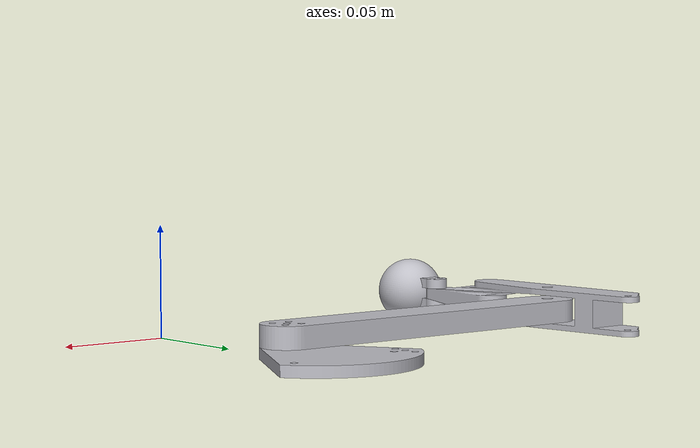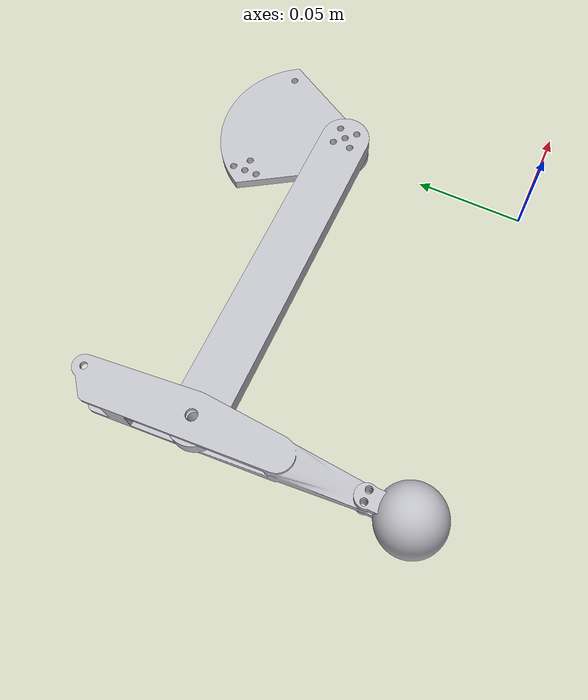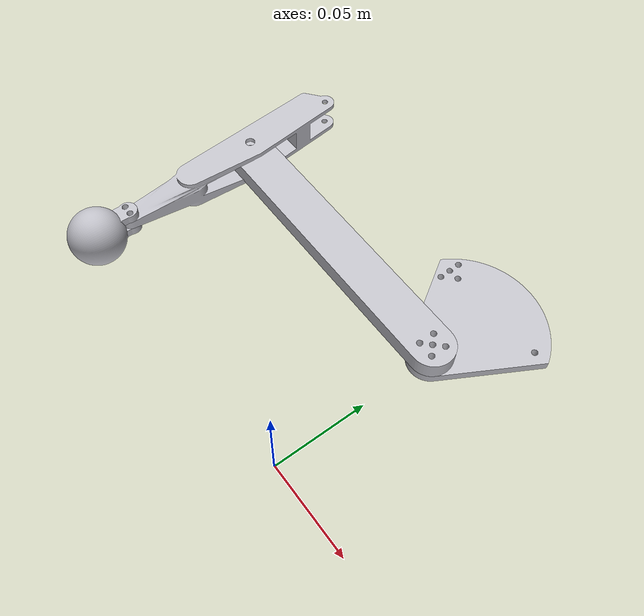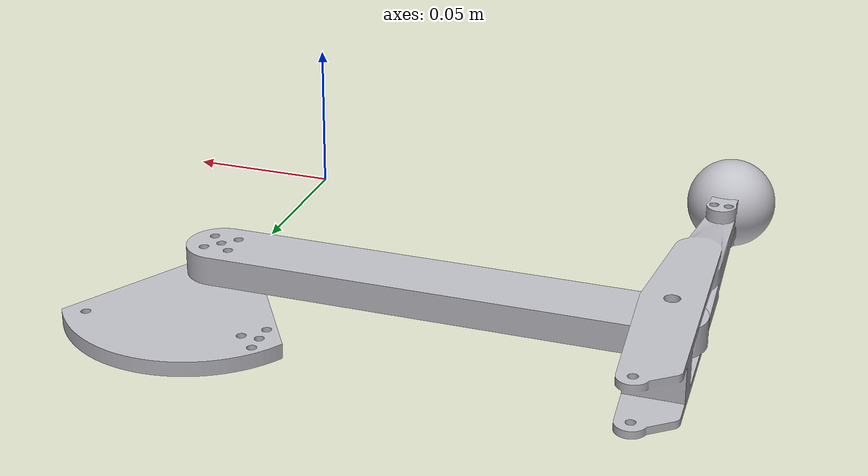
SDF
<sdf version='1.11'>
  <model name='leg1'>
    <link name='base_link'>
      <inertial>
        <pose>-0.00055856856062800784 0.12100156940500099 0.002499999999999997 0 0 0</pose>
        <mass>0.017892844407040882</mass>
        <inertia>
          <ixx>6.0000000000000002e-06</ixx>
          <ixy>0</ixy>
          <ixz>0</ixz>
          <iyy>5.0000000000000004e-06</iyy>
          <iyz>0</iyz>
          <izz>1.0000000000000001e-05</izz>
        </inertia>
      </inertial>
      <collision name='base_link_collision'>
        <pose>0 0 0 0 0 0</pose>
        <geometry>
          <mesh>
            <scale>0.001 0.001 0.001</scale>
            <uri>file:///home/houndsito/vt-cro/robogamescode/leg1_ws/install/leg1_description/share/leg1_description/meshes/base_link.stl</uri>
          </mesh>
        </geometry>
        <surface>
          <contact>
            <ode/>
          </contact>
          <friction>
            <ode>
              <mu>0.20000000000000001</mu>
              <mu2>0.20000000000000001</mu2>
            </ode>
          </friction>
        </surface>
      </collision>
      <visual name='base_link_visual'>
        <pose>0 0 0 0 0 0</pose>
        <geometry>
          <mesh>
            <scale>0.001 0.001 0.001</scale>
            <uri>file:///home/houndsito/vt-cro/robogamescode/leg1_ws/install/leg1_description/share/leg1_description/meshes/base_link.stl</uri>
          </mesh>
        </geometry>
        <material>
          <script>
            <name>Gazebo/Silver</name>
            <uri>file://media/materials/scripts/gazebo.material</uri>
          </script>
          <diffuse>0.875 0.875 0.875 1</diffuse>
          <ambient>0.875 0.875 0.875 1</ambient>
        </material>
      </visual>
      <self_collide>true</self_collide>
      <gravity>true</gravity>
    </link>
    <joint name='Revolute 8' type='revolute'>
      <pose relative_to='base_link'>0 0.089999999999999997 0.0050000000000000001 0 0 0</pose>
      <parent>base_link</parent>
      <child>upperleg_1</child>
      <axis>
        <xyz>0 0 1</xyz>
        <limit>
          <lower>-0.33161299999999999</lower>
          <upper>0.47123900000000002</upper>
          <effort>100</effort>
          <velocity>100</velocity>
        </limit>
        <dynamics>
          <spring_reference>0</spring_reference>
          <spring_stiffness>0</spring_stiffness>
        </dynamics>
      </axis>
    </joint>
    <link name='upperleg_1'>
      <pose relative_to='Revolute 8'>0 0 0 0 0 0</pose>
      <inertial>
        <pose>-0.075391165480534109 0 0.0048999999999999972 0 0 0</pose>
        <mass>0.039498804019950789</mass>
        <inertia>
          <ixx>1.9999999999999999e-06</ixx>
          <ixy>0</ixy>
          <ixz>0</ixz>
          <iyy>9.1000000000000003e-05</iyy>
          <iyz>0</iyz>
          <izz>9.2999999999999997e-05</izz>
        </inertia>
      </inertial>
      <collision name='upperleg_1_collision'>
        <pose>0 -0.089999999999999997 -0.0050000000000000001 0 0 0</pose>
        <geometry>
          <mesh>
            <scale>0.001 0.001 0.001</scale>
            <uri>file:///home/houndsito/vt-cro/robogamescode/leg1_ws/install/leg1_description/share/leg1_description/meshes/upperleg_1.stl</uri>
          </mesh>
        </geometry>
        <surface>
          <contact>
            <ode/>
          </contact>
          <friction>
            <ode>
              <mu>0.20000000000000001</mu>
              <mu2>0.20000000000000001</mu2>
            </ode>
          </friction>
        </surface>
      </collision>
      <visual name='upperleg_1_visual'>
        <pose>0 -0.089999999999999997 -0.0050000000000000001 0 0 0</pose>
        <geometry>
          <mesh>
            <scale>0.001 0.001 0.001</scale>
            <uri>file:///home/houndsito/vt-cro/robogamescode/leg1_ws/install/leg1_description/share/leg1_description/meshes/upperleg_1.stl</uri>
          </mesh>
        </geometry>
        <material>
          <script>
            <name>Gazebo/Silver</name>
            <uri>file://media/materials/scripts/gazebo.material</uri>
          </script>
          <diffuse>0.875 0.875 0.875 1</diffuse>
          <ambient>0.875 0.875 0.875 1</ambient>
        </material>
      </visual>
      <self_collide>true</self_collide>
    </link>
    <joint name='Revolute 14' type='revolute'>
      <pose relative_to='upperleg_1'>-0.14999999999999999 0 0 0 0 0</pose>
      <parent>upperleg_1</parent>
      <child>lowerleg_1</child>
      <axis>
        <xyz>0 0 1</xyz>
        <limit>
          <lower>-0.50614499999999996</lower>
          <upper>0.19198599999999999</upper>
          <effort>100</effort>
          <velocity>100</velocity>
        </limit>
        <dynamics>
          <spring_reference>0</spring_reference>
          <spring_stiffness>0</spring_stiffness>
        </dynamics>
      </axis>
    </joint>
    <link name='lowerleg_1'>
      <pose relative_to='Revolute 14'>0 0 0 0 0 0</pose>
      <inertial>
        <pose>-0.00048487497129850261 -0.074435144985854448 0.0062462445415356286 0 0 0</pose>
        <mass>0.032237031801720467</mass>
        <inertia>
          <ixx>3.2886518710689083e-05</ixx>
          <ixy>1.2233249213218341e-06</ixy>
          <ixz>-4.3468382630126509e-11</ixz>
          <iyy>2.0056126606852061e-06</iyy>
          <iyz>1.7296886466779271e-09</iyz>
          <izz>3.2892130698034558e-05</izz>
        </inertia>
      </inertial>
      <collision name='lowerleg_1_collision'>
        <pose>0.14999999999999999 -0.089999999999999997 -0.0050000000000000001 0 0 0</pose>
        <geometry>
          <mesh>
            <scale>0.001 0.001 0.001</scale>
            <uri>file:///home/houndsito/vt-cro/robogamescode/leg1_ws/install/leg1_description/share/leg1_description/meshes/lowerleg_1.stl</uri>
          </mesh>
        </geometry>
        <surface>
          <contact>
            <ode/>
          </contact>
          <friction>
            <ode>
              <mu>0.20000000000000001</mu>
              <mu2>0.20000000000000001</mu2>
            </ode>
          </friction>
        </surface>
      </collision>
      <collision name='lowerleg_1_fixed_joint_lump__sphere_1_collision_1'>
        <pose>0.14999999999999999 -0.089999999999999997 -0.0049999999999999992 0 0 0</pose>
        <geometry>
          <mesh>
            <scale>0.001 0.001 0.001</scale>
            <uri>file:///home/houndsito/vt-cro/robogamescode/leg1_ws/install/leg1_description/share/leg1_description/meshes/sphere_1.stl</uri>
          </mesh>
        </geometry>
        <surface>
          <contact>
            <ode/>
          </contact>
          <friction>
            <ode>
              <mu>0.20000000000000001</mu>
              <mu2>0.20000000000000001</mu2>
            </ode>
          </friction>
        </surface>
      </collision>
      <visual name='lowerleg_1_visual'>
        <pose>0.14999999999999999 -0.089999999999999997 -0.0050000000000000001 0 0 0</pose>
        <geometry>
          <mesh>
            <scale>0.001 0.001 0.001</scale>
            <uri>file:///home/houndsito/vt-cro/robogamescode/leg1_ws/install/leg1_description/share/leg1_description/meshes/lowerleg_1.stl</uri>
          </mesh>
        </geometry>
        <material>
          <script>
            <name>Gazebo/Silver</name>
            <uri>file://media/materials/scripts/gazebo.material</uri>
          </script>
          <diffuse>0.875 0.875 0.875 1</diffuse>
          <ambient>0.875 0.875 0.875 1</ambient>
        </material>
      </visual>
      <visual name='lowerleg_1_fixed_joint_lump__sphere_1_visual_1'>
        <pose>0.14999999999999999 -0.089999999999999997 -0.0049999999999999992 0 0 0</pose>
        <geometry>
          <mesh>
            <scale>0.001 0.001 0.001</scale>
            <uri>file:///home/houndsito/vt-cro/robogamescode/leg1_ws/install/leg1_description/share/leg1_description/meshes/sphere_1.stl</uri>
          </mesh>
        </geometry>
        <material>
          <script>
            <name>Gazebo/Silver</name>
            <uri>file://media/materials/scripts/gazebo.material</uri>
          </script>
          <diffuse>0.875 0.875 0.875 1</diffuse>
          <ambient>0.875 0.875 0.875 1</ambient>
        </material>
      </visual>
      <self_collide>true</self_collide>
      <self_collide>true</self_collide>
      <self_collide>true</self_collide>
    </link>
    <plugin name='control' filename='libgazebo_ros_control.so'/>
    <frame name='Rigid 13' attached_to='lowerleg_1'>
      <pose>-0.0025000000000000001 -0.075499999999999998 0.0087500000000000008 0 0 0</pose>
    </frame>
    <frame name='sphere_1' attached_to='Rigid 13'>
      <pose>0 0 0 0 0 0</pose>
    </frame>
  </model>
</sdf>
